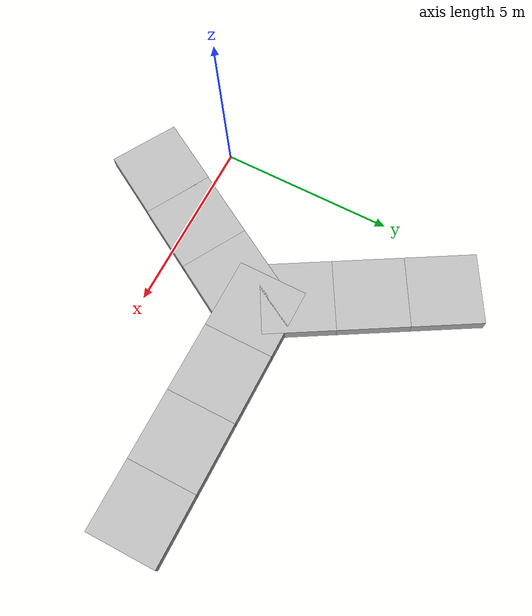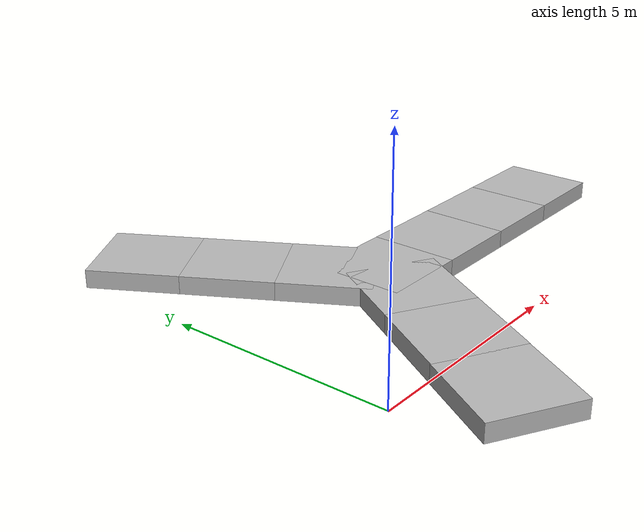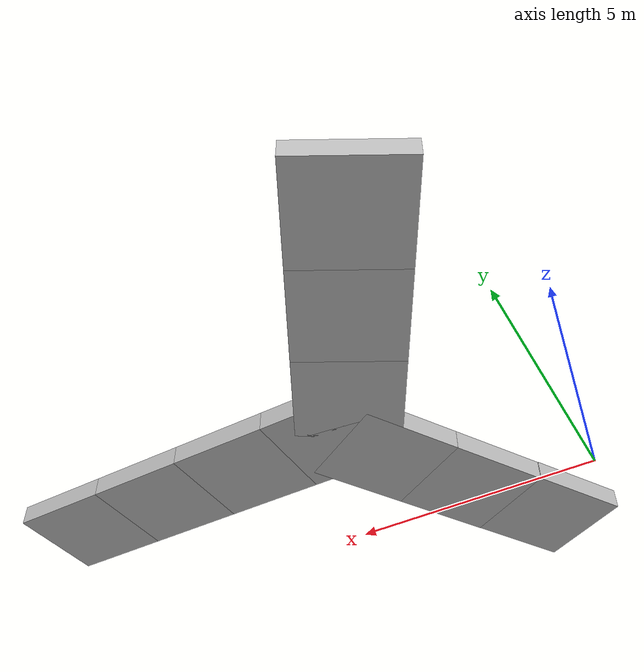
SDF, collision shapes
<?xml version="1.0" ?>
<sdf version="1.6">

  <!-- Important: This file is generated. DO NOT EDIT! -->

  <model name="robotx_dock_2018_baseY">

    <!--
      This is how this dock should look like:
          X  X          X  X          X  X          XXXX          XXXX          X  X          X  X          X  X
    -->

    <!-- Row 0 -->
    <include>
      <name>dock_block_0</name>
      <pose>1.464 -1.446 0.25 0 0 -0.5236</pose>
      <uri>model://dock_block_4x4</uri>
    </include>
    <include>
      <name>dock_block_1</name>
      <pose>1.2 7.304 0.25 0 0 0.5236</pose>
      <uri>model://dock_block_4x4</uri>
    </include>

    <!-- Row 1 -->
    <include>
      <name>dock_block_2</name>
      <pose>2.464 0.268 0.25 0 0 -0.5236</pose>
      <uri>model://dock_block_4x4</uri>
    </include>
    <include>
      <name>dock_block_3</name>
      <pose>2.2 5.572 0.25 0 0 0.5236</pose>
      <uri>model://dock_block_4x4</uri>
    </include>

    <!-- Row 2 -->
    <include>
      <name>dock_block_4</name>
      <pose>3.464 2 0.25 0 0 -0.5236</pose>
      <uri>model://dock_block_4x4</uri>
    </include>
    <include>
      <name>dock_block_5</name>
      <pose>3.2 3.84 0.25 0 0 0.5236</pose>
      <uri>model://dock_block_4x4</uri>
    </include>

    <!-- Row 3 -->
    <include>
      <name>dock_block_6</name>
      <pose>4 3 0.25 0 0 0</pose>
      <uri>model://dock_block_4x4</uri>
    </include>

    <!-- Row 4 -->
    <include>
      <name>dock_block_7</name>
      <pose>6 3 0.25 0 0 0</pose>
      <uri>model://dock_block_4x4</uri>
    </include>

    <!-- Row 5 -->
    <include>
      <name>dock_block_8</name>
      <pose>8 3 0.25 0 0 0</pose>
      <uri>model://dock_block_4x4</uri>
    </include>

    <!-- Row 6 -->
    <include>
      <name>dock_block_9</name>
      <pose>10 3 0.25 0 0 0</pose>
      <uri>model://dock_block_4x4</uri>
    </include>

  </model>
</sdf>

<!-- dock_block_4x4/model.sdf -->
<sdf version="1.5">
  <model name="dock_block_4x4">
    <static>true</static>
    <link name="link">
      <collision name="collision">
        <pose>0 0 0 0 0 0</pose>
        <geometry>
          <box>
            <size>2 2 0.4</size>
          </box>
        </geometry>
      </collision>
      <visual name="visual">
        <pose>-0.25 0.25 0.0 0 0 0 </pose>
        <geometry>
          <mesh>
            <uri>file://dock_block_4x4/mesh/dock_block_4x4.dae</uri>
          </mesh>
        </geometry>
      </visual>
    </link>
  </model>
</sdf>
